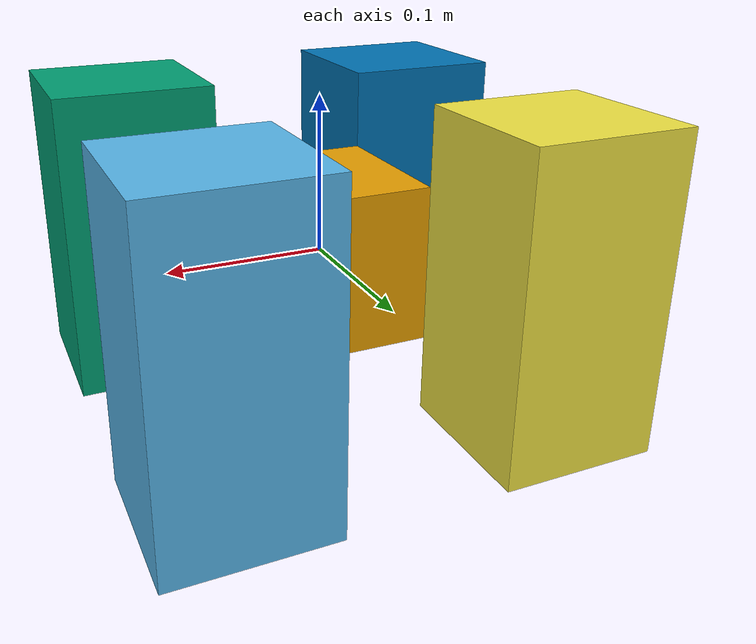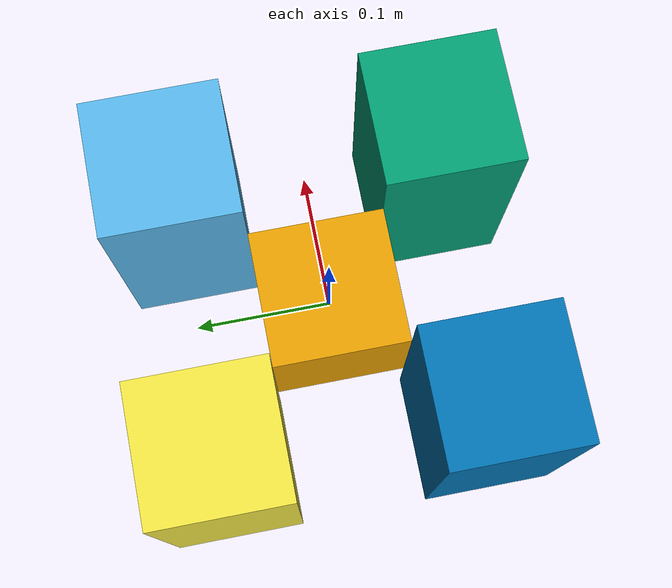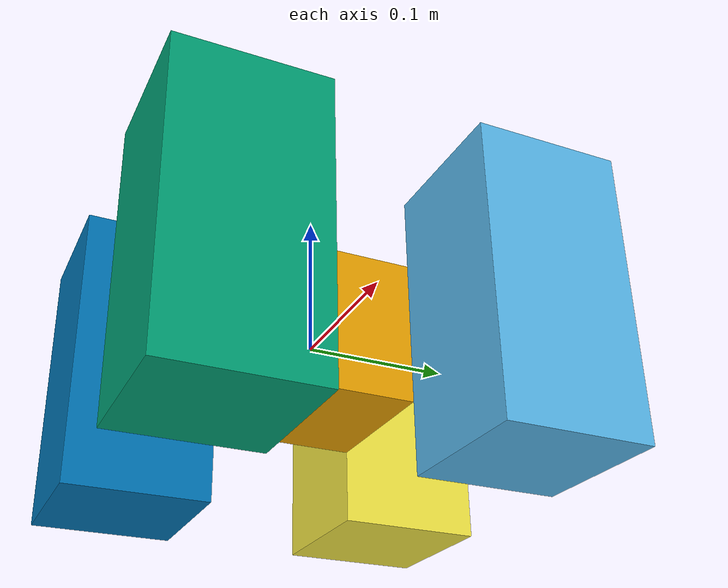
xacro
<?xml version="1.0" ?>
<robot name="myrobot" xmlns:xacro="http://ros.org/wiki/xacro">

    <!--- new_gazebo_version should be false by default because pinocchio needs it!-->
    <xacro:arg name="robot_name" default="myrobot"/>

    <xacro:include filename="$(find myrobot_description)/gazebo/gazebo.urdf.xacro">
    	<xacro:arg name="task_period" value="$(arg task_period)"/>
	<xacro:arg name="robot_name" value="$(arg robot_name)"/>
    </xacro:include>

    <xacro:include filename="$(find myrobot_description)/urdfs/myleg.xacro"/>

    <link name="base_link">
   	<inertial>
		<origin xyz="0.0 0.0 0.0"/>
		<mass value="15" />
		<inertia  ixx="0.001" ixy="0.0"  ixz="0.0"  iyy="0.001"  iyz="0.0"  izz="0.001" />
	</inertial>
	<visual>
		<origin xyz="0 0.0 0.0" rpy="0 0 0"/>
		<geometry>
			<box size="0.1 0.1 0.1"/>
		</geometry>
	</visual>
	<collision>
		<origin  xyz="0 0.0 0.0 " rpy="0 0 0"/>
		<geometry>
			<box size="0.1 0.1 0.1"/>
		</geometry>
	</collision>
    </link>

    <!-- LEFT FRONT LEG -->
     <xacro:leg
    	name="lf"
    	parent="base_link"
    	robot_name="$(arg robot_name)">
    	<origin xyz="0.1 0.1 0.0" rpy="0 0 0"/>
    </xacro:leg>

    <!-- RIGHT FRONT LEG -->
    <xacro:leg
    	name="rf"
    	parent="base_link"
    	robot_name="$(arg robot_name)">
    	<origin xyz="0.1 -0.1 0.0" rpy="0 0 0"/>
    </xacro:leg>

    <!-- LEFT HIND LEG -->
     <xacro:leg
    	name="lh"
    	parent="base_link"
    	robot_name="$(arg robot_name)">
    	<origin xyz="-0.1 0.1 0.0" rpy="0 0 0"/>
    </xacro:leg>

    <!-- RIGHT HIND LEG -->
    <xacro:leg
    	name="rh"
    	parent="base_link"
    	robot_name="$(arg robot_name)">
    	<origin xyz="-0.1 -0.1 0.0" rpy="0 0 0"/>
    </xacro:leg>

</robot>

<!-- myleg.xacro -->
<robot xmlns:xacro="http://ros.org/wiki/xacro" name="solo">

    <!-- Things that are needed only for Gazebo (not the physical robot). These include sensor and controller plugin specifications -->
    <xacro:include filename="$(find myrobot_description)/urdfs/myleg.transmission.xacro"/>
    <xacro:include filename="$(find myrobot_description)/urdfs/myleg.gazebo.xacro"/>

    <!-- This macro has for purpose to define a leg -->
    <xacro:macro name="leg" params="name parent robot_name *origin ">

	<joint name="${name}_shoulder_pan_joint" type="revolute">
		<parent link="${parent}"/>
		<child link="${name}_shoulder_link"/>
		<axis xyz="0 0 1"/>
		<xacro:insert_block name="origin"/>
		<limit effort="50" velocity="10.0" lower="-3.14" upper="3.14" />
	</joint>

	<link name="${name}_shoulder_link">
		<inertial>
			<origin xyz="0.0 0.0 0.0"/>
			<mass value="0.05" />
			<inertia  ixx="0.001" ixy="0.0"  ixz="0.0"  iyy="0.001"  iyz="0.0"  izz="0.001" />
		</inertial>
			<visual>
			<origin xyz="0 0.0 0.0" rpy="0 0 0"/>
			<geometry>
				<box size="0.1 0.1 0.2"/>
			</geometry>
			</visual>
		<collision>
			<origin  xyz="0 0.0 0.0 " rpy="0 0 0"/>
			<geometry>
				<box size="0.1 0.1 0.2"/>
			</geometry>
		</collision>
	</link>

        <!-- Extensions -->
        <xacro:leg_transmission name="${name}"/>
        <xacro:leg_gazebo name="${name}" robot_name="${robot_name}"/>
    </xacro:macro>
</robot>
